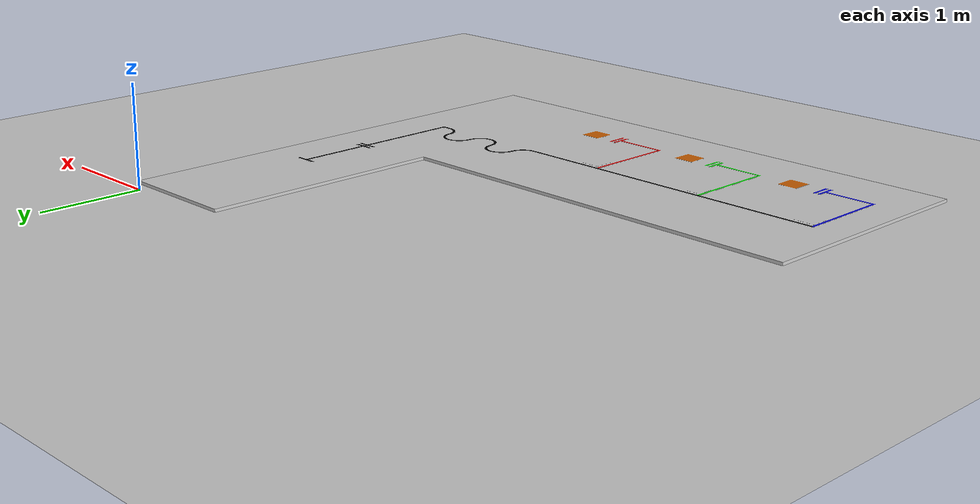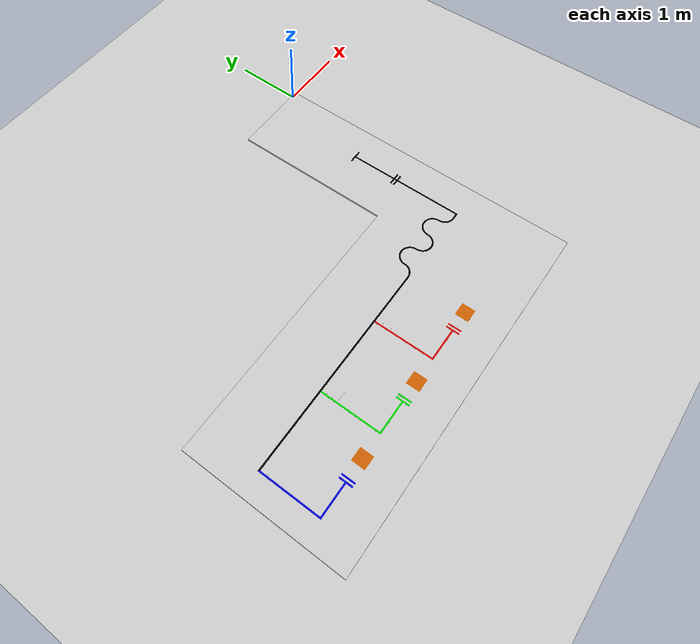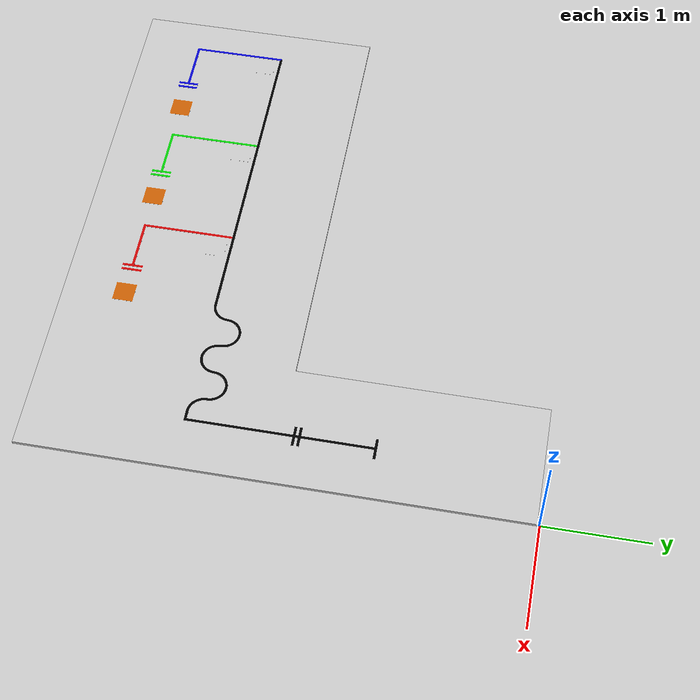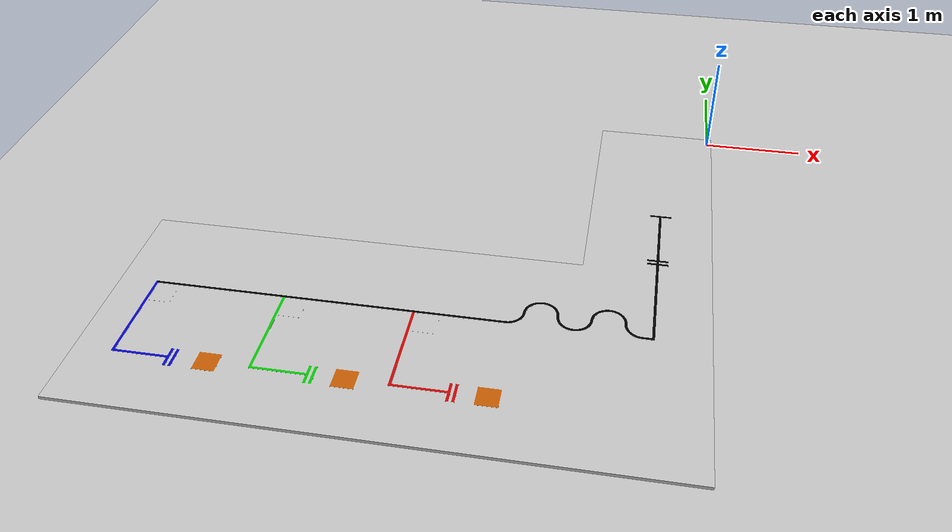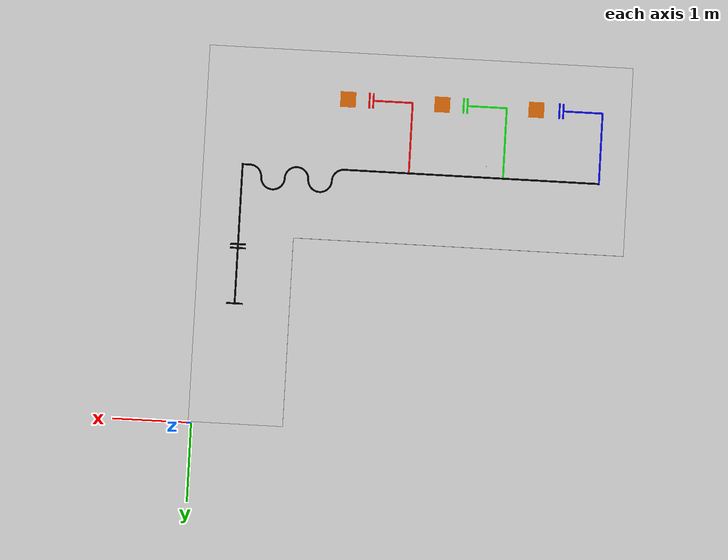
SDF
<sdf version="1.7">
 <world name="default">
  <light name="sun" type="directional">
   <pose>0 0 10 0 -0 0</pose>
   <diffuse>0.8 0.8 0.8 1</diffuse>
   <specular>0.2 0.2 0.2 1</specular>
   <attenuation>
    <range>1000</range>
    <constant>0.9</constant>
    <linear>0.01</linear>
    <quadratic>0.001</quadratic>
   </attenuation>
   <direction>-0.5 0.1 -0.9</direction>
   <spot><inner_angle>0</inner_angle><outer_angle>0</outer_angle><falloff>0</falloff></spot>
  </light>
  <model name="ground_plane">
   <static>1</static>
   <link name="link">
    <collision name="collision">
     <geometry><plane><normal>0 0 1</normal><size>100 100</size></plane></geometry>
     <surface>
      <contact><collide_bitmask>65535</collide_bitmask></contact>
      <friction><ode><mu>100</mu><mu2>50</mu2></ode></friction>
     </surface>
    </collision>
    <visual name="visual">
     <cast_shadows>0</cast_shadows>
     <geometry><plane><normal>0 0 1</normal><size>100 100</size></plane></geometry>
     <material>
      <script><uri>file://media/materials/scripts/gazebo.material</uri><name>Gazebo/Grey</name></script>
     </material>
    </visual>
   </link>
  </model>
  <gravity>0 0 -9.8</gravity>
  <magnetic_field>6e-06 2.3e-05 -4.2e-05</magnetic_field>
  <atmosphere type="adiabatic"/>
  <physics type="ode">
   <max_step_size>0.001</max_step_size>
   <real_time_factor>1</real_time_factor>
   <real_time_update_rate>1000</real_time_update_rate>
  </physics>
  <scene><ambient>0.4 0.4 0.4 1</ambient><background>0.7 0.7 0.7 1</background><shadows>1</shadows></scene>
  <audio><device>default</device></audio>
  <spherical_coordinates>
   <surface_model>EARTH_WGS84</surface_model>
   <latitude_deg>0</latitude_deg>
   <longitude_deg>0</longitude_deg>
   <elevation>0</elevation>
   <heading_deg>0</heading_deg>
  </spherical_coordinates>
  <model name="map">
   <link name="link_0">
    <inertial>
     <mass>100</mass>
     <inertia><ixx>16.6667</ixx><ixy>0</ixy><ixz>0</ixz><iyy>16.6667</iyy><iyz>0</iyz><izz>16.6667</izz></inertia>
    </inertial>
    <pose>3e-06 -3e-06 0 0 -0 0</pose>
    <visual name="visual">
     <geometry>
      <mesh><uri>/home/robot_ws/src/robot_description/worlds/map.dae</uri><scale>1 1 1</scale></mesh>
     </geometry>
    </visual>
    <collision name="collision">
     <geometry>
      <mesh><uri>/home/robot_ws/src/robot_description/worlds/map.dae</uri><scale>1 1 1</scale></mesh>
     </geometry>
     <surface>
      <friction>
       <ode><mu>1</mu><mu2>1</mu2><fdir1>0 0 0</fdir1><slip1>0</slip1><slip2>0</slip2></ode>
       <torsional>
        <coefficient>1</coefficient>
        <patch_radius>0</patch_radius>
        <surface_radius>0</surface_radius>
        <use_patch_radius>1</use_patch_radius>
        <ode><slip>0</slip></ode>
       </torsional>
      </friction>
      <bounce><restitution_coefficient>0</restitution_coefficient><threshold>1e+06</threshold></bounce>
      <contact>
       <collide_without_contact>0</collide_without_contact>
       <collide_without_contact_bitmask>1</collide_without_contact_bitmask>
       <collide_bitmask>1</collide_bitmask>
       <ode>
        <soft_cfm>0</soft_cfm>
        <soft_erp>0.2</soft_erp>
        <kp>1e+13</kp>
        <kd>1</kd>
        <max_vel>0.01</max_vel>
        <min_depth>0</min_depth>
       </ode>
       <bullet>
        <split_impulse>1</split_impulse>
        <split_impulse_penetration_threshold>-0.01</split_impulse_penetration_threshold>
        <soft_cfm>0</soft_cfm>
        <soft_erp>0.2</soft_erp>
        <kp>1e+13</kp>
        <kd>1</kd>
       </bullet>
      </contact>
     </surface>
    </collision>
   </link>
   <static>1</static>
   <pose>0.014117 -4.80352 0.080157 0 -0 0</pose>
  </model>
  <light name="user_point_light_0" type="point">
   <pose>-0.462924 -1.66868 1 0 -0 0</pose>
   <diffuse>0.5 0.5 0.5 1</diffuse>
   <specular>0.1 0.1 0.1 1</specular>
   <attenuation>
    <range>20</range>
    <constant>0.5</constant>
    <linear>0.01</linear>
    <quadratic>0.001</quadratic>
   </attenuation>
   <cast_shadows>0</cast_shadows>
   <direction>0 0 -1</direction>
  </light>
  <light name="user_point_light_1" type="point">
   <pose>-0.438146 -3.2433 1 0 -0 0</pose>
   <diffuse>0.5 0.5 0.5 1</diffuse>
   <specular>0.1 0.1 0.1 1</specular>
   <attenuation>
    <range>20</range>
    <constant>0.5</constant>
    <linear>0.01</linear>
    <quadratic>0.001</quadratic>
   </attenuation>
   <cast_shadows>0</cast_shadows>
   <direction>0 0 -1</direction>
  </light>
  <light name="user_point_light_2" type="point">
   <pose>-2.43312 -3.26095 1 0 -0 0</pose>
   <diffuse>0.5 0.5 0.5 1</diffuse>
   <specular>0.1 0.1 0.1 1</specular>
   <attenuation>
    <range>20</range>
    <constant>0.5</constant>
    <linear>0.01</linear>
    <quadratic>0.001</quadratic>
   </attenuation>
   <cast_shadows>0</cast_shadows>
   <direction>0 0 -1</direction>
  </light>
  <light name="user_point_light_3" type="point">
   <pose>-3.60704 -3.3343 1 0 -0 0</pose>
   <diffuse>0.5 0.5 0.5 1</diffuse>
   <specular>0.1 0.1 0.1 1</specular>
   <attenuation>
    <range>20</range>
    <constant>0.5</constant>
    <linear>0.01</linear>
    <quadratic>0.001</quadratic>
   </attenuation>
   <cast_shadows>0</cast_shadows>
   <direction>0 0 -1</direction>
  </light>
  <light name="user_point_light_4" type="point">
   <pose>-4.84491 -3.25803 1 0 -0 0</pose>
   <diffuse>0.5 0.5 0.5 1</diffuse>
   <specular>0.1 0.1 0.1 1</specular>
   <attenuation>
    <range>20</range>
    <constant>0.5</constant>
    <linear>0.01</linear>
    <quadratic>0.001</quadratic>
   </attenuation>
   <cast_shadows>0</cast_shadows>
   <direction>0 0 -1</direction>
  </light>
 </world>
</sdf>
